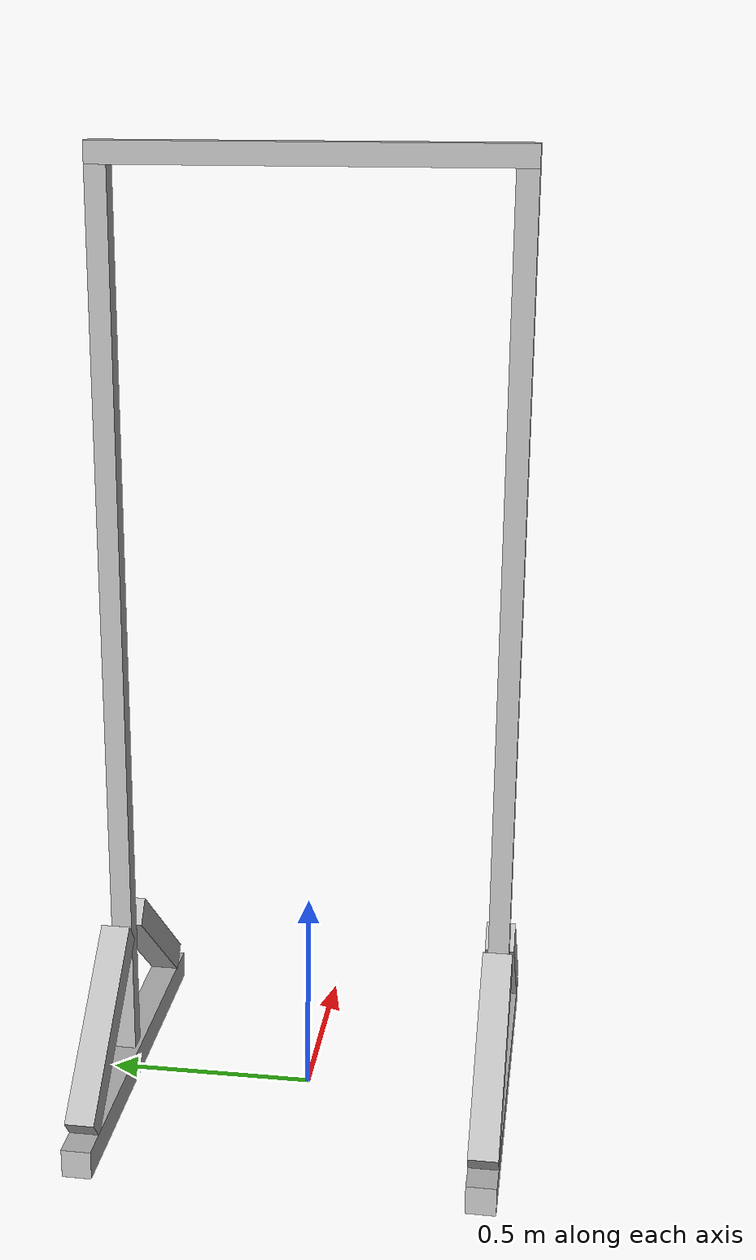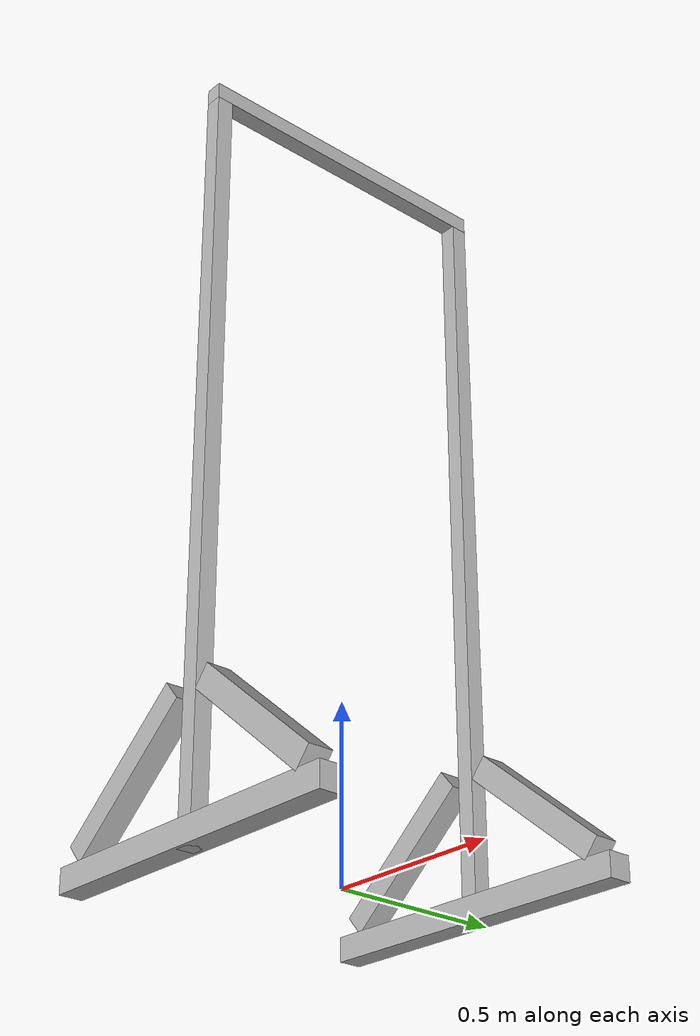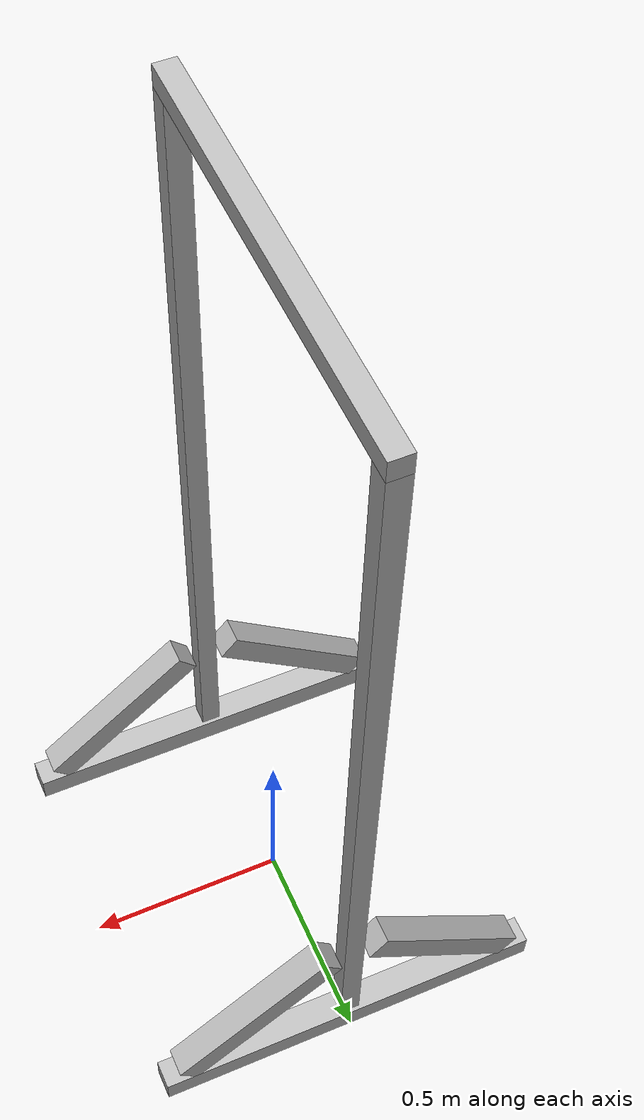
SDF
<?xml version="1.0"?>
<sdf version="1.6">
  <model name="door_wooden" type="door">
    <link name="outward">
      <virtual_volume name="outward_vv">
        <geometry>
          <box>
            <size>0.2 0.35 0.01</size>
          </box>
        </geometry>
        <pose>0.6 0.0 0.0 0 0 0</pose>
      </virtual_volume>
    </link>
    <link name="inward">
      <virtual_volume name="inward_vv">
        <geometry>
          <box>
            <size>0.2 0.35 0.01</size>
          </box>
        </geometry>
        <pose>-0.6 0.0 0.0 0 0 0</pose>
      </virtual_volume>
    </link>
    <link name="hinge">
      <virtual_volume name="hinge_vv">
        <geometry>
          <box>
            <size>0.05 0.05 2.23</size>
          </box>
        </geometry>
        <pose>-0.025 -0.465 1.115 0 0 0</pose>
      </virtual_volume>
    </link>
    <link name="handle">
      <virtual_volume name="handle_vv">
        <geometry>
          <box>
            <size>0.2 0.12 0.12</size>
          </box>
        </geometry>
        <pose>0 0.365 1.06 0 0 0</pose>
      </virtual_volume>
    </link>
    <link name="frame_right_point">
      <virtual_volume name="frame_right_point_vv">
        <geometry>
          <box>
            <size>0.02 0.02 0.02</size>
          </box>
        </geometry>
        <pose>0 -0.465 0 0 0 0</pose>
      </virtual_volume>
    </link>
    <link name="frame_left_point">
      <virtual_volume name="frame_left_point_vv">
        <geometry>
          <box>
            <size>0.02 0.02 0.02</size>
          </box>
        </geometry>
        <pose>0 0.465 0 0 0 0</pose>
      </virtual_volume>
    </link>
    <link name="frame_right">
      <collision name="frame_right_col">
        <geometry>
          <box>
            <size>0.05 0.05 2.23</size>
          </box>
        </geometry>
        <pose>0.0 -0.465 1.115 0 0 0</pose>
      </collision>
      <visual name="frame_right_vis">
        <geometry>
          <box>
            <size>0.05 0.05 2.23</size>
          </box>
        </geometry>
        <pose>0.0 -0.465 1.115 0 0 0</pose>
      </visual>
    </link>
    <link name="frame_left">
      <collision name="frame_left_col">
        <geometry>
          <box>
            <size>0.05 0.05 2.23</size>
          </box>
        </geometry>
        <pose>0.0 0.465 1.115 0 0 0</pose>
      </collision>
      <visual name="frame_left_vis">
        <geometry>
          <box>
            <size>0.05 0.05 2.23</size>
          </box>
        </geometry>
        <pose>0.0 0.465 1.115 0 0 0</pose>
      </visual>
    </link>
    <link name="frame_top">
      <collision name="frame_top_col">
        <geometry>
          <box>
            <size>0.05 0.98 0.05</size>
          </box>
        </geometry>
        <pose>0.0 0.465 2.23 0 0 0</pose>
      </collision>
      <visual name="frame_top_vis">
        <geometry>
          <box>
            <size>0.05 0.98 0.05</size>
          </box>
        </geometry>
        <pose>0.0 0 2.255 0 0 0</pose>
      </visual>
    </link>
    <link name="brace_1">
      <collision name="brace_1_col">
        <geometry>
          <box>
            <size>0.07 0.5 0.07</size>
          </box>
        </geometry>
        <pose>0.25 0.465 0.25 0.7 0 1.57</pose>
      </collision>
      <visual name="brace_1_vis">
        <geometry>
          <box>
            <size>0.07 0.5 0.07</size>
          </box>
        </geometry>
        <pose>0.25 0.465 0.25 0.7 0.0 1.57</pose>
      </visual>
    </link>
    <link name="brace_2">
      <collision name="brace_2_col">
        <geometry>
          <box>
            <size>0.07 0.5 0.07</size>
          </box>
        </geometry>
        <pose>0.25 -0.465 0.25 0.7 0 1.57</pose>
      </collision>
      <visual name="brace_2_vis">
        <geometry>
          <box>
            <size>0.07 0.5 0.07</size>
          </box>
        </geometry>
        <pose>0.25 -0.465 0.25 0.7 0.0 1.57</pose>
      </visual>
    </link>
    <link name="brace_3">
      <collision name="brace_3_col">
        <geometry>
          <box>
            <size>0.07 0.5 0.07</size>
          </box>
        </geometry>
        <pose>-0.25 0.465 0.25 -0.7 0 1.57</pose>
      </collision>
      <visual name="brace_3_vis">
        <geometry>
          <box>
            <size>0.07 0.5 0.07</size>
          </box>
        </geometry>
        <pose>-0.25 0.465 0.25 -0.7 0.0 1.57</pose>
      </visual>
    </link>
    <link name="brace_4">
      <collision name="brace_4_col">
        <geometry>
          <box>
            <size>0.07 0.5 0.07</size>
          </box>
        </geometry>
        <pose>-0.25 -0.465 0.25 -0.7 0 1.57</pose>
      </collision>
      <visual name="brace_4_vis">
        <geometry>
          <box>
            <size>0.07 0.5 0.07</size>
          </box>
        </geometry>
        <pose>-0.25 -0.465 0.25 -0.7 0.0 1.57</pose>
      </visual>
    </link>
    <link name="base_left">
      <collision name="base_left_col">
        <geometry>
          <box>
            <size>1.0 0.07 0.07</size>
          </box>
        </geometry>
        <pose>0.0 0.465 0.035 0 0 0</pose>
      </collision>
      <visual name="base_left_vis">
        <geometry>
          <box>
            <size>1.0 0.07 0.07</size>
          </box>
        </geometry>
        <pose>0.0 0.465 0.035 0 0 0</pose>
      </visual>
    </link>
    <link name="base_right">
      <collision name="base_right_col">
        <geometry>
          <box>
            <size>1.0 0.07 0.07</size>
          </box>
        </geometry>
        <pose>0.0 -0.465 0.035 0 0 0</pose>
      </collision>
      <visual name="base_right_vis">
        <geometry>
          <box>
            <size>1.0 0.07 0.07</size>
          </box>
        </geometry>
        <pose>0.0 -0.465 0.035 0 0 0</pose>
      </visual>
    </link>
    <static>true</static>
  </model>
</sdf>
